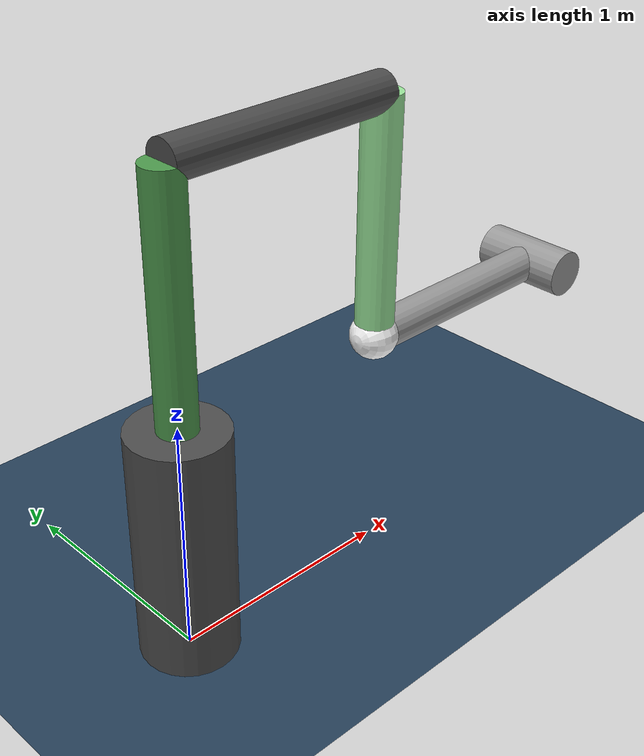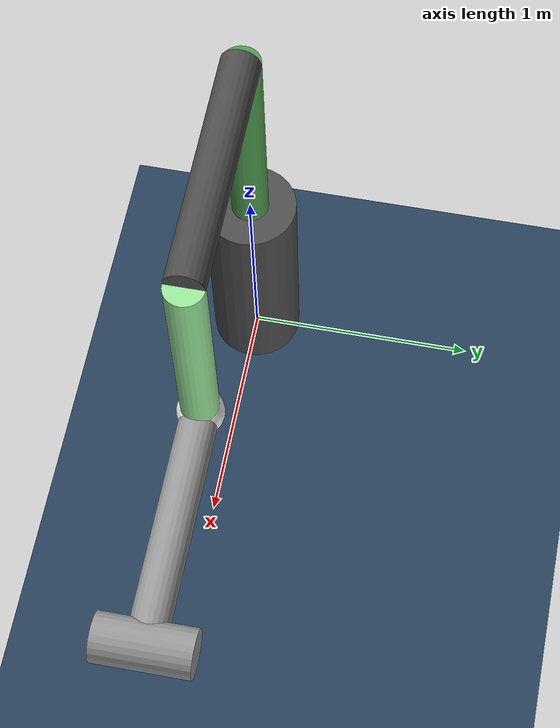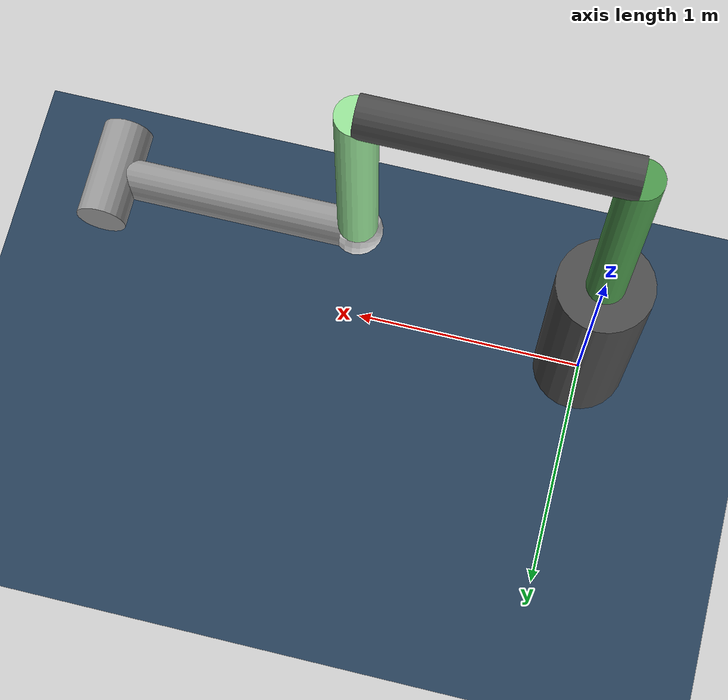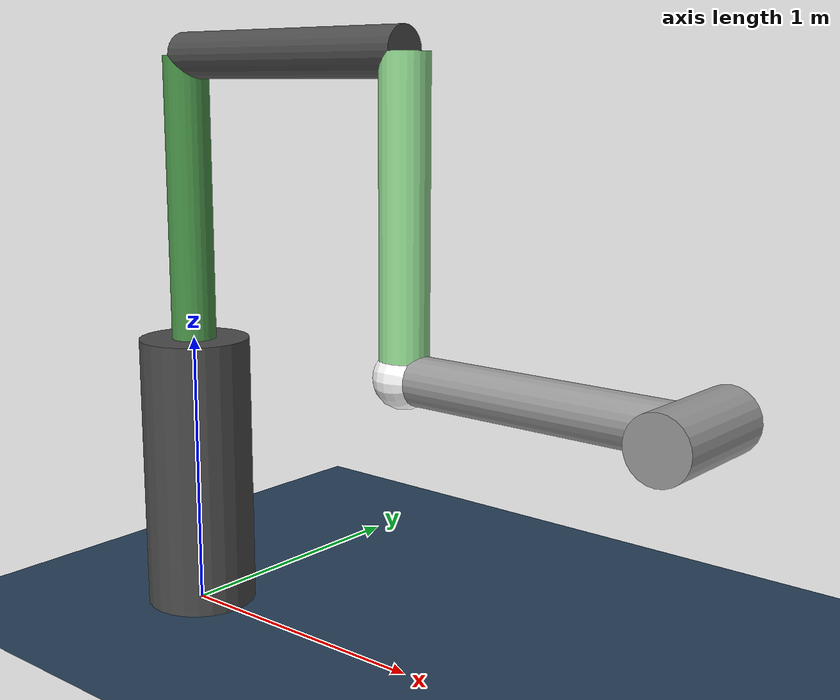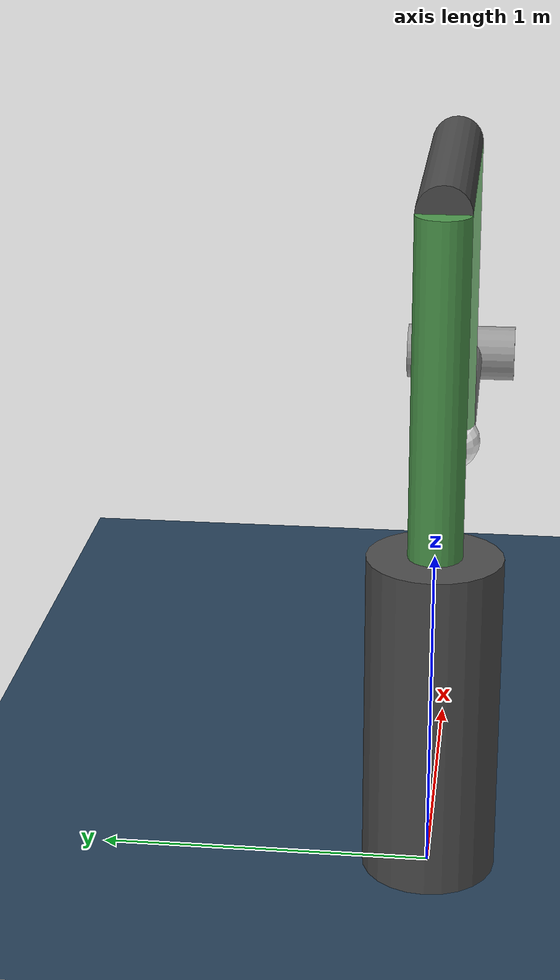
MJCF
<?xml version="1.0"?>
<mujoco model="3r_arm">
    <option integrator="RK4" timestep="0.001" />
    <compiler angle="degree" />

    <visual>
        <map force="0.1" zfar="30" />
        <rgba haze="0.15 0.25 0.35 1" />
        <global offwidth="2560" offheight="1440" elevation="-20" azimuth="120" />
    </visual>

    <asset>
        <texture type="skybox" builtin="gradient" rgb1=".3 .5 .7" rgb2="0 0 0" width="32"
            height="512" />
        <texture name="body" type="cube" builtin="flat" mark="cross" width="128" height="128"
            rgb1="0.8 0.6 0.4" rgb2="0.8 0.6 0.4" markrgb="1 1 1" random="0.01" />
        <material name="body" texture="body" texuniform="true" rgba="0.8 0.6 .4 1" />
        <material name="grey" rgba="0.6 0.6 0.6 1" />
        <material name="green" rgba="0.6 0.9 0.6 1" />
        <material name="dark_green" rgba="0.3 0.6 .3 1" />
        <material name="dark_grey" rgba="0.3 0.3 .3 1" />
        <texture name="grid" type="2d" builtin="checker" width="512" height="512" rgb1=".1 .2 .3"
            rgb2=".2 .3 .4" />
        <material name="grid" texture="grid" texrepeat="1 1" texuniform="true" reflectance=".2" />
    </asset>

    <default>
        <joint type="hinge" limited="true" range="-180 180" axis="0 0 1" />
    </default>

    <worldbody>

        <geom name="floor" size="0 0 .001" type="plane" material="grid" condim="3" />
        <light name="spotlight" diffuse=".5 .8 .8" specular="0.3 0.3 0.3" pos="0 0 8" />

        <body name="base" pos="0 0 0.5">
            <geom type="cylinder" size="0.2 0.5" material="dark_grey" />

            <body name="link1" pos="0 0 1">
                <geom type="cylinder" size="0.08 0.5" material="dark_green" />
                <joint name="joint1" pos="0 0 0.5" />

                <body name="link2" pos="0.5 0 0.5" euler="0 90 0">
                    <geom type="cylinder" size="0.08 0.5" material="dark_grey" />

                    <body name="link3" pos="0.5 0 0.5" euler="90 0 0">
                        <joint name="joint2" pos="-0.5 0 0" />
                        <geom type="cylinder" size="0.08 0.5" euler="0 90 0" material="green" />

                        <body name="link4" pos="0.5 0.5 0" euler="-90 0 0">
                            <joint name="joint3" pos="0 0 -0.5" />
                            <site name="frame3_site" pos="0 0 -0.5" size="0.1" rgba="1 1 1 1" />

                            <geom type="cylinder" size="0.08 0.5" material="grey" />
                            <body name="ee" pos="0 0 0.5" euler="90 0 0">
                                <geom type="cylinder" size="0.1 0.2" material="grey" />
                            </body>
                        </body>
                    </body>

                </body>
            </body>
        </body>
    </worldbody>

</mujoco>
